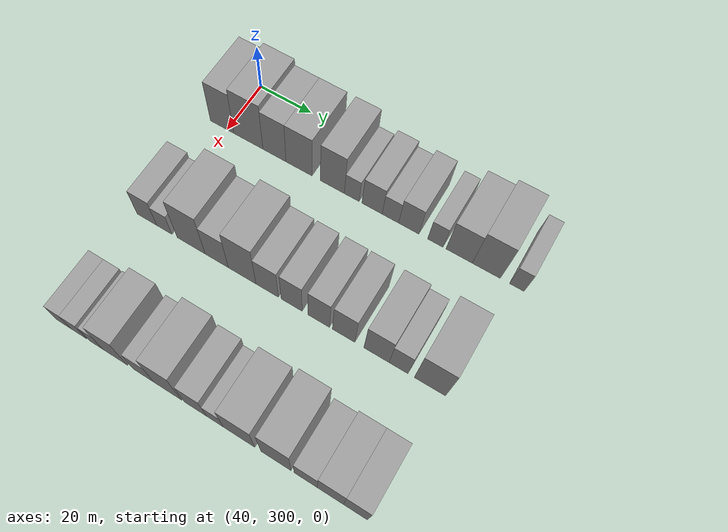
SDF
<sdf version="1.6">
 <world name="default">
  <model name="building_105">
   <static>1</static>
   <pose>50.0000 298.0296 0 0.000000 0.000000 0.000000</pose>
   <link name="link">
    <pose>0 0 10.50 0 0 0</pose>
    <collision name="collision"><geometry><box><size>20.0000 9.2401 21.0000</size></box></geometry></collision>
    <visual name="visual">
     <cast_shadows>0</cast_shadows>
     <geometry><box><size>20.0000 9.2401 21.0000</size></box></geometry>
     <material>
      <script>
       <uri>model://grey_wall/materials/scripts</uri>
       <uri>model://grey_wall/materials/textures</uri>
       <name>vrc/grey_wall</name>
      </script>
     </material>
    </visual>
   </link>
  </model>
  <model name="building_106">
   <static>1</static>
   <pose>50.0000 308.3014 0 0.000000 0.000000 0.000000</pose>
   <link name="link">
    <pose>0 0 12.00 0 0 0</pose>
    <collision name="collision"><geometry><box><size>20.0000 11.3035 24.0000</size></box></geometry></collision>
    <visual name="visual">
     <cast_shadows>0</cast_shadows>
     <geometry><box><size>20.0000 11.3035 24.0000</size></box></geometry>
     <material>
      <script>
       <uri>model://grey_wall/materials/scripts</uri>
       <uri>model://grey_wall/materials/textures</uri>
       <name>vrc/grey_wall</name>
      </script>
     </material>
    </visual>
   </link>
  </model>
  <model name="building_107">
   <static>1</static>
   <pose>50.0000 318.3527 0 0.000000 0.000000 0.000000</pose>
   <link name="link">
    <pose>0 0 10.50 0 0 0</pose>
    <collision name="collision"><geometry><box><size>20.0000 8.7992 21.0000</size></box></geometry></collision>
    <visual name="visual">
     <cast_shadows>0</cast_shadows>
     <geometry><box><size>20.0000 8.7992 21.0000</size></box></geometry>
     <material>
      <script>
       <uri>model://grey_wall/materials/scripts</uri>
       <uri>model://grey_wall/materials/textures</uri>
       <name>vrc/grey_wall</name>
      </script>
     </material>
    </visual>
   </link>
  </model>
  <model name="building_108">
   <static>1</static>
   <pose>50.0000 327.6701 0 0.000000 0.000000 0.000000</pose>
   <link name="link">
    <pose>0 0 10.50 0 0 0</pose>
    <collision name="collision"><geometry><box><size>20.0000 9.8355 21.0000</size></box></geometry></collision>
    <visual name="visual">
     <cast_shadows>0</cast_shadows>
     <geometry><box><size>20.0000 9.8355 21.0000</size></box></geometry>
     <material>
      <script>
       <uri>model://grey_wall/materials/scripts</uri>
       <uri>model://grey_wall/materials/textures</uri>
       <name>vrc/grey_wall</name>
      </script>
     </material>
    </visual>
   </link>
  </model>
  <model name="building_109">
   <static>1</static>
   <pose>50.0000 340.0471 0 0.000000 0.000000 0.000000</pose>
   <link name="link">
    <pose>0 0 10.50 0 0 0</pose>
    <collision name="collision"><geometry><box><size>20.0000 8.9186 21.0000</size></box></geometry></collision>
    <visual name="visual">
     <cast_shadows>0</cast_shadows>
     <geometry><box><size>20.0000 8.9186 21.0000</size></box></geometry>
     <material>
      <script>
       <uri>model://grey_wall/materials/scripts</uri>
       <uri>model://grey_wall/materials/textures</uri>
       <name>vrc/grey_wall</name>
      </script>
     </material>
    </visual>
   </link>
  </model>
  <model name="building_110">
   <static>1</static>
   <pose>50.0000 347.1937 0 0.000000 0.000000 0.000000</pose>
   <link name="link">
    <pose>0 0 6.00 0 0 0</pose>
    <collision name="collision"><geometry><box><size>20.0000 5.3746 12.0000</size></box></geometry></collision>
    <visual name="visual">
     <cast_shadows>0</cast_shadows>
     <geometry><box><size>20.0000 5.3746 12.0000</size></box></geometry>
     <material>
      <script>
       <uri>model://grey_wall/materials/scripts</uri>
       <uri>model://grey_wall/materials/textures</uri>
       <name>vrc/grey_wall</name>
      </script>
     </material>
    </visual>
   </link>
  </model>
  <model name="building_111">
   <static>1</static>
   <pose>50.0000 354.5247 0 0.000000 0.000000 0.000000</pose>
   <link name="link">
    <pose>0 0 7.50 0 0 0</pose>
    <collision name="collision"><geometry><box><size>20.0000 7.2872 15.0000</size></box></geometry></collision>
    <visual name="visual">
     <cast_shadows>0</cast_shadows>
     <geometry><box><size>20.0000 7.2872 15.0000</size></box></geometry>
     <material>
      <script>
       <uri>model://grey_wall/materials/scripts</uri>
       <uri>model://grey_wall/materials/textures</uri>
       <name>vrc/grey_wall</name>
      </script>
     </material>
    </visual>
   </link>
  </model>
  <model name="building_112">
   <static>1</static>
   <pose>50.0000 361.0859 0 0.000000 0.000000 0.000000</pose>
   <link name="link">
    <pose>0 0 6.00 0 0 0</pose>
    <collision name="collision"><geometry><box><size>20.0000 5.8353 12.0000</size></box></geometry></collision>
    <visual name="visual">
     <cast_shadows>0</cast_shadows>
     <geometry><box><size>20.0000 5.8353 12.0000</size></box></geometry>
     <material>
      <script>
       <uri>model://grey_wall/materials/scripts</uri>
       <uri>model://grey_wall/materials/textures</uri>
       <name>vrc/grey_wall</name>
      </script>
     </material>
    </visual>
   </link>
  </model>
  <model name="building_113">
   <static>1</static>
   <pose>50.0000 367.5748 0 0.000000 0.000000 0.000000</pose>
   <link name="link">
    <pose>0 0 7.50 0 0 0</pose>
    <collision name="collision"><geometry><box><size>20.0000 7.1423 15.0000</size></box></geometry></collision>
    <visual name="visual">
     <cast_shadows>0</cast_shadows>
     <geometry><box><size>20.0000 7.1423 15.0000</size></box></geometry>
     <material>
      <script>
       <uri>model://grey_wall/materials/scripts</uri>
       <uri>model://grey_wall/materials/textures</uri>
       <name>vrc/grey_wall</name>
      </script>
     </material>
    </visual>
   </link>
  </model>
  <model name="building_114">
   <static>1</static>
   <pose>50.0000 376.8160 0 0.000000 0.000000 0.000000</pose>
   <link name="link">
    <pose>0 0 6.00 0 0 0</pose>
    <collision name="collision"><geometry><box><size>20.0000 5.3402 12.0000</size></box></geometry></collision>
    <visual name="visual">
     <cast_shadows>0</cast_shadows>
     <geometry><box><size>20.0000 5.3402 12.0000</size></box></geometry>
     <material>
      <script>
       <uri>model://grey_wall/materials/scripts</uri>
       <uri>model://grey_wall/materials/textures</uri>
       <name>vrc/grey_wall</name>
      </script>
     </material>
    </visual>
   </link>
  </model>
  <model name="building_115">
   <static>1</static>
   <pose>50.0000 384.9585 0 0.000000 0.000000 0.000000</pose>
   <link name="link">
    <pose>0 0 9.00 0 0 0</pose>
    <collision name="collision"><geometry><box><size>20.0000 8.9447 18.0000</size></box></geometry></collision>
    <visual name="visual">
     <cast_shadows>0</cast_shadows>
     <geometry><box><size>20.0000 8.9447 18.0000</size></box></geometry>
     <material>
      <script>
       <uri>model://grey_wall/materials/scripts</uri>
       <uri>model://grey_wall/materials/textures</uri>
       <name>vrc/grey_wall</name>
      </script>
     </material>
    </visual>
   </link>
  </model>
  <model name="building_116">
   <static>1</static>
   <pose>50.0000 394.1420 0 0.000000 0.000000 0.000000</pose>
   <link name="link">
    <pose>0 0 10.50 0 0 0</pose>
    <collision name="collision"><geometry><box><size>20.0000 9.4224 21.0000</size></box></geometry></collision>
    <visual name="visual">
     <cast_shadows>0</cast_shadows>
     <geometry><box><size>20.0000 9.4224 21.0000</size></box></geometry>
     <material>
      <script>
       <uri>model://grey_wall/materials/scripts</uri>
       <uri>model://grey_wall/materials/textures</uri>
       <name>vrc/grey_wall</name>
      </script>
     </material>
    </visual>
   </link>
  </model>
  <model name="building_117">
   <static>1</static>
   <pose>50.0000 404.2622 0 0.000000 0.000000 0.000000</pose>
   <link name="link">
    <pose>0 0 6.00 0 0 0</pose>
    <collision name="collision"><geometry><box><size>20.0000 4.8180 12.0000</size></box></geometry></collision>
    <visual name="visual">
     <cast_shadows>0</cast_shadows>
     <geometry><box><size>20.0000 4.8180 12.0000</size></box></geometry>
     <material>
      <script>
       <uri>model://grey_wall/materials/scripts</uri>
       <uri>model://grey_wall/materials/textures</uri>
       <name>vrc/grey_wall</name>
      </script>
     </material>
    </visual>
   </link>
  </model>
  <model name="building_245">
   <static>1</static>
   <pose>90.0000 297.2946 0 0.000000 0.000000 0.000000</pose>
   <link name="link">
    <pose>0 0 7.50 0 0 0</pose>
    <collision name="collision"><geometry><box><size>20.0000 7.4727 15.0000</size></box></geometry></collision>
    <visual name="visual">
     <cast_shadows>0</cast_shadows>
     <geometry><box><size>20.0000 7.4727 15.0000</size></box></geometry>
     <material>
      <script>
       <uri>model://grey_wall/materials/scripts</uri>
       <uri>model://grey_wall/materials/textures</uri>
       <name>vrc/grey_wall</name>
      </script>
     </material>
    </visual>
   </link>
  </model>
  <model name="building_246">
   <static>1</static>
   <pose>90.0000 303.9105 0 0.000000 0.000000 0.000000</pose>
   <link name="link">
    <pose>0 0 6.00 0 0 0</pose>
    <collision name="collision"><geometry><box><size>20.0000 5.7591 12.0000</size></box></geometry></collision>
    <visual name="visual">
     <cast_shadows>0</cast_shadows>
     <geometry><box><size>20.0000 5.7591 12.0000</size></box></geometry>
     <material>
      <script>
       <uri>model://grey_wall/materials/scripts</uri>
       <uri>model://grey_wall/materials/textures</uri>
       <name>vrc/grey_wall</name>
      </script>
     </material>
    </visual>
   </link>
  </model>
  <model name="building_247">
   <static>1</static>
   <pose>90.0000 313.9900 0 0.000000 0.000000 0.000000</pose>
   <link name="link">
    <pose>0 0 12.00 0 0 0</pose>
    <collision name="collision"><geometry><box><size>20.0000 10.3999 24.0000</size></box></geometry></collision>
    <visual name="visual">
     <cast_shadows>0</cast_shadows>
     <geometry><box><size>20.0000 10.3999 24.0000</size></box></geometry>
     <material>
      <script>
       <uri>model://grey_wall/materials/scripts</uri>
       <uri>model://grey_wall/materials/textures</uri>
       <name>vrc/grey_wall</name>
      </script>
     </material>
    </visual>
   </link>
  </model>
  <model name="building_248">
   <static>1</static>
   <pose>90.0000 323.4488 0 0.000000 0.000000 0.000000</pose>
   <link name="link">
    <pose>0 0 9.00 0 0 0</pose>
    <collision name="collision"><geometry><box><size>20.0000 8.5177 18.0000</size></box></geometry></collision>
    <visual name="visual">
     <cast_shadows>0</cast_shadows>
     <geometry><box><size>20.0000 8.5177 18.0000</size></box></geometry>
     <material>
      <script>
       <uri>model://grey_wall/materials/scripts</uri>
       <uri>model://grey_wall/materials/textures</uri>
       <name>vrc/grey_wall</name>
      </script>
     </material>
    </visual>
   </link>
  </model>
  <model name="building_249">
   <static>1</static>
   <pose>90.0000 332.6952 0 0.000000 0.000000 0.000000</pose>
   <link name="link">
    <pose>0 0 12.00 0 0 0</pose>
    <collision name="collision"><geometry><box><size>20.0000 9.9750 24.0000</size></box></geometry></collision>
    <visual name="visual">
     <cast_shadows>0</cast_shadows>
     <geometry><box><size>20.0000 9.9750 24.0000</size></box></geometry>
     <material>
      <script>
       <uri>model://grey_wall/materials/scripts</uri>
       <uri>model://grey_wall/materials/textures</uri>
       <name>vrc/grey_wall</name>
      </script>
     </material>
    </visual>
   </link>
  </model>
  <model name="building_250">
   <static>1</static>
   <pose>90.0000 341.6424 0 0.000000 0.000000 0.000000</pose>
   <link name="link">
    <pose>0 0 9.00 0 0 0</pose>
    <collision name="collision"><geometry><box><size>20.0000 7.9195 18.0000</size></box></geometry></collision>
    <visual name="visual">
     <cast_shadows>0</cast_shadows>
     <geometry><box><size>20.0000 7.9195 18.0000</size></box></geometry>
     <material>
      <script>
       <uri>model://grey_wall/materials/scripts</uri>
       <uri>model://grey_wall/materials/textures</uri>
       <name>vrc/grey_wall</name>
      </script>
     </material>
    </visual>
   </link>
  </model>
  <model name="building_251">
   <static>1</static>
   <pose>90.0000 350.2497 0 0.000000 0.000000 0.000000</pose>
   <link name="link">
    <pose>0 0 9.00 0 0 0</pose>
    <collision name="collision"><geometry><box><size>20.0000 7.2952 18.0000</size></box></geometry></collision>
    <visual name="visual">
     <cast_shadows>0</cast_shadows>
     <geometry><box><size>20.0000 7.2952 18.0000</size></box></geometry>
     <material>
      <script>
       <uri>model://grey_wall/materials/scripts</uri>
       <uri>model://grey_wall/materials/textures</uri>
       <name>vrc/grey_wall</name>
      </script>
     </material>
    </visual>
   </link>
  </model>
  <model name="building_252">
   <static>1</static>
   <pose>90.0000 359.5843 0 0.000000 0.000000 0.000000</pose>
   <link name="link">
    <pose>0 0 9.00 0 0 0</pose>
    <collision name="collision"><geometry><box><size>20.0000 7.3740 18.0000</size></box></geometry></collision>
    <visual name="visual">
     <cast_shadows>0</cast_shadows>
     <geometry><box><size>20.0000 7.3740 18.0000</size></box></geometry>
     <material>
      <script>
       <uri>model://grey_wall/materials/scripts</uri>
       <uri>model://grey_wall/materials/textures</uri>
       <name>vrc/grey_wall</name>
      </script>
     </material>
    </visual>
   </link>
  </model>
  <model name="building_253">
   <static>1</static>
   <pose>90.0000 368.0543 0 0.000000 0.000000 0.000000</pose>
   <link name="link">
    <pose>0 0 9.00 0 0 0</pose>
    <collision name="collision"><geometry><box><size>20.0000 7.5661 18.0000</size></box></geometry></collision>
    <visual name="visual">
     <cast_shadows>0</cast_shadows>
     <geometry><box><size>20.0000 7.5661 18.0000</size></box></geometry>
     <material>
      <script>
       <uri>model://grey_wall/materials/scripts</uri>
       <uri>model://grey_wall/materials/textures</uri>
       <name>vrc/grey_wall</name>
      </script>
     </material>
    </visual>
   </link>
  </model>
  <model name="building_254">
   <static>1</static>
   <pose>90.0000 379.0158 0 0.000000 0.000000 0.000000</pose>
   <link name="link">
    <pose>0 0 9.00 0 0 0</pose>
    <collision name="collision"><geometry><box><size>20.0000 8.3568 18.0000</size></box></geometry></collision>
    <visual name="visual">
     <cast_shadows>0</cast_shadows>
     <geometry><box><size>20.0000 8.3568 18.0000</size></box></geometry>
     <material>
      <script>
       <uri>model://grey_wall/materials/scripts</uri>
       <uri>model://grey_wall/materials/textures</uri>
       <name>vrc/grey_wall</name>
      </script>
     </material>
    </visual>
   </link>
  </model>
  <model name="building_255">
   <static>1</static>
   <pose>90.0000 386.2844 0 0.000000 0.000000 0.000000</pose>
   <link name="link">
    <pose>0 0 7.50 0 0 0</pose>
    <collision name="collision"><geometry><box><size>20.0000 6.1805 15.0000</size></box></geometry></collision>
    <visual name="visual">
     <cast_shadows>0</cast_shadows>
     <geometry><box><size>20.0000 6.1805 15.0000</size></box></geometry>
     <material>
      <script>
       <uri>model://grey_wall/materials/scripts</uri>
       <uri>model://grey_wall/materials/textures</uri>
       <name>vrc/grey_wall</name>
      </script>
     </material>
    </visual>
   </link>
  </model>
  <model name="building_256">
   <static>1</static>
   <pose>90.0000 396.3751 0 0.000000 0.000000 0.000000</pose>
   <link name="link">
    <pose>0 0 10.50 0 0 0</pose>
    <collision name="collision"><geometry><box><size>20.0000 10.0008 21.0000</size></box></geometry></collision>
    <visual name="visual">
     <cast_shadows>0</cast_shadows>
     <geometry><box><size>20.0000 10.0008 21.0000</size></box></geometry>
     <material>
      <script>
       <uri>model://grey_wall/materials/scripts</uri>
       <uri>model://grey_wall/materials/textures</uri>
       <name>vrc/grey_wall</name>
      </script>
     </material>
    </visual>
   </link>
  </model>
  <model name="building_384">
   <static>1</static>
   <pose>130.0000 297.0006 0 0.000000 0.000000 0.000000</pose>
   <link name="link">
    <pose>0 0 6.00 0 0 0</pose>
    <collision name="collision"><geometry><box><size>20.0000 5.3875 12.0000</size></box></geometry></collision>
    <visual name="visual">
     <cast_shadows>0</cast_shadows>
     <geometry><box><size>20.0000 5.3875 12.0000</size></box></geometry>
     <material>
      <script>
       <uri>model://grey_wall/materials/scripts</uri>
       <uri>model://grey_wall/materials/textures</uri>
       <name>vrc/grey_wall</name>
      </script>
     </material>
    </visual>
   </link>
  </model>
  <model name="building_385">
   <static>1</static>
   <pose>130.0000 302.5507 0 0.000000 0.000000 0.000000</pose>
   <link name="link">
    <pose>0 0 6.00 0 0 0</pose>
    <collision name="collision"><geometry><box><size>20.0000 5.7127 12.0000</size></box></geometry></collision>
    <visual name="visual">
     <cast_shadows>0</cast_shadows>
     <geometry><box><size>20.0000 5.7127 12.0000</size></box></geometry>
     <material>
      <script>
       <uri>model://grey_wall/materials/scripts</uri>
       <uri>model://grey_wall/materials/textures</uri>
       <name>vrc/grey_wall</name>
      </script>
     </material>
    </visual>
   </link>
  </model>
  <model name="building_386">
   <static>1</static>
   <pose>130.0000 308.8936 0 0.000000 0.000000 0.000000</pose>
   <link name="link">
    <pose>0 0 6.00 0 0 0</pose>
    <collision name="collision"><geometry><box><size>20.0000 4.9731 12.0000</size></box></geometry></collision>
    <visual name="visual">
     <cast_shadows>0</cast_shadows>
     <geometry><box><size>20.0000 4.9731 12.0000</size></box></geometry>
     <material>
      <script>
       <uri>model://grey_wall/materials/scripts</uri>
       <uri>model://grey_wall/materials/textures</uri>
       <name>vrc/grey_wall</name>
      </script>
     </material>
    </visual>
   </link>
  </model>
  <model name="building_387">
   <static>1</static>
   <pose>130.0000 315.8220 0 0.000000 0.000000 0.000000</pose>
   <link name="link">
    <pose>0 0 10.50 0 0 0</pose>
    <collision name="collision"><geometry><box><size>20.0000 8.8836 21.0000</size></box></geometry></collision>
    <visual name="visual">
     <cast_shadows>0</cast_shadows>
     <geometry><box><size>20.0000 8.8836 21.0000</size></box></geometry>
     <material>
      <script>
       <uri>model://grey_wall/materials/scripts</uri>
       <uri>model://grey_wall/materials/textures</uri>
       <name>vrc/grey_wall</name>
      </script>
     </material>
    </visual>
   </link>
  </model>
  <model name="building_388">
   <static>1</static>
   <pose>130.0000 325.9228 0 0.000000 0.000000 0.000000</pose>
   <link name="link">
    <pose>0 0 7.50 0 0 0</pose>
    <collision name="collision"><geometry><box><size>20.0000 7.3181 15.0000</size></box></geometry></collision>
    <visual name="visual">
     <cast_shadows>0</cast_shadows>
     <geometry><box><size>20.0000 7.3181 15.0000</size></box></geometry>
     <material>
      <script>
       <uri>model://grey_wall/materials/scripts</uri>
       <uri>model://grey_wall/materials/textures</uri>
       <name>vrc/grey_wall</name>
      </script>
     </material>
    </visual>
   </link>
  </model>
  <model name="building_389">
   <static>1</static>
   <pose>130.0000 334.3830 0 0.000000 0.000000 0.000000</pose>
   <link name="link">
    <pose>0 0 12.00 0 0 0</pose>
    <collision name="collision"><geometry><box><size>20.0000 9.6024 24.0000</size></box></geometry></collision>
    <visual name="visual">
     <cast_shadows>0</cast_shadows>
     <geometry><box><size>20.0000 9.6024 24.0000</size></box></geometry>
     <material>
      <script>
       <uri>model://grey_wall/materials/scripts</uri>
       <uri>model://grey_wall/materials/textures</uri>
       <name>vrc/grey_wall</name>
      </script>
     </material>
    </visual>
   </link>
  </model>
  <model name="building_390">
   <static>1</static>
   <pose>130.0000 343.9438 0 0.000000 0.000000 0.000000</pose>
   <link name="link">
    <pose>0 0 9.00 0 0 0</pose>
    <collision name="collision"><geometry><box><size>20.0000 7.5192 18.0000</size></box></geometry></collision>
    <visual name="visual">
     <cast_shadows>0</cast_shadows>
     <geometry><box><size>20.0000 7.5192 18.0000</size></box></geometry>
     <material>
      <script>
       <uri>model://grey_wall/materials/scripts</uri>
       <uri>model://grey_wall/materials/textures</uri>
       <name>vrc/grey_wall</name>
      </script>
     </material>
    </visual>
   </link>
  </model>
  <model name="building_391">
   <static>1</static>
   <pose>130.0000 350.5058 0 0.000000 0.000000 0.000000</pose>
   <link name="link">
    <pose>0 0 6.00 0 0 0</pose>
    <collision name="collision"><geometry><box><size>20.0000 5.6047 12.0000</size></box></geometry></collision>
    <visual name="visual">
     <cast_shadows>0</cast_shadows>
     <geometry><box><size>20.0000 5.6047 12.0000</size></box></geometry>
     <material>
      <script>
       <uri>model://grey_wall/materials/scripts</uri>
       <uri>model://grey_wall/materials/textures</uri>
       <name>vrc/grey_wall</name>
      </script>
     </material>
    </visual>
   </link>
  </model>
  <model name="building_392">
   <static>1</static>
   <pose>130.0000 358.5032 0 0.000000 0.000000 0.000000</pose>
   <link name="link">
    <pose>0 0 10.50 0 0 0</pose>
    <collision name="collision"><geometry><box><size>20.0000 10.3900 21.0000</size></box></geometry></collision>
    <visual name="visual">
     <cast_shadows>0</cast_shadows>
     <geometry><box><size>20.0000 10.3900 21.0000</size></box></geometry>
     <material>
      <script>
       <uri>model://grey_wall/materials/scripts</uri>
       <uri>model://grey_wall/materials/textures</uri>
       <name>vrc/grey_wall</name>
      </script>
     </material>
    </visual>
   </link>
  </model>
  <model name="building_393">
   <static>1</static>
   <pose>130.0000 370.5416 0 0.000000 0.000000 0.000000</pose>
   <link name="link">
    <pose>0 0 12.00 0 0 0</pose>
    <collision name="collision"><geometry><box><size>20.0000 9.6870 24.0000</size></box></geometry></collision>
    <visual name="visual">
     <cast_shadows>0</cast_shadows>
     <geometry><box><size>20.0000 9.6870 24.0000</size></box></geometry>
     <material>
      <script>
       <uri>model://grey_wall/materials/scripts</uri>
       <uri>model://grey_wall/materials/textures</uri>
       <name>vrc/grey_wall</name>
      </script>
     </material>
    </visual>
   </link>
  </model>
  <model name="building_394">
   <static>1</static>
   <pose>130.0000 380.0307 0 0.000000 0.000000 0.000000</pose>
   <link name="link">
    <pose>0 0 7.50 0 0 0</pose>
    <collision name="collision"><geometry><box><size>20.0000 7.2911 15.0000</size></box></geometry></collision>
    <visual name="visual">
     <cast_shadows>0</cast_shadows>
     <geometry><box><size>20.0000 7.2911 15.0000</size></box></geometry>
     <material>
      <script>
       <uri>model://grey_wall/materials/scripts</uri>
       <uri>model://grey_wall/materials/textures</uri>
       <name>vrc/grey_wall</name>
      </script>
     </material>
    </visual>
   </link>
  </model>
  <model name="building_395">
   <static>1</static>
   <pose>130.0000 387.7671 0 0.000000 0.000000 0.000000</pose>
   <link name="link">
    <pose>0 0 9.00 0 0 0</pose>
    <collision name="collision"><geometry><box><size>20.0000 8.1817 18.0000</size></box></geometry></collision>
    <visual name="visual">
     <cast_shadows>0</cast_shadows>
     <geometry><box><size>20.0000 8.1817 18.0000</size></box></geometry>
     <material>
      <script>
       <uri>model://grey_wall/materials/scripts</uri>
       <uri>model://grey_wall/materials/textures</uri>
       <name>vrc/grey_wall</name>
      </script>
     </material>
    </visual>
   </link>
  </model>
  <model name="building_396">
   <static>1</static>
   <pose>130.0000 395.5273 0 0.000000 0.000000 0.000000</pose>
   <link name="link">
    <pose>0 0 9.00 0 0 0</pose>
    <collision name="collision"><geometry><box><size>20.0000 7.3387 18.0000</size></box></geometry></collision>
    <visual name="visual">
     <cast_shadows>0</cast_shadows>
     <geometry><box><size>20.0000 7.3387 18.0000</size></box></geometry>
     <material>
      <script>
       <uri>model://grey_wall/materials/scripts</uri>
       <uri>model://grey_wall/materials/textures</uri>
       <name>vrc/grey_wall</name>
      </script>
     </material>
    </visual>
   </link>
  </model>
 </world>
</sdf>
